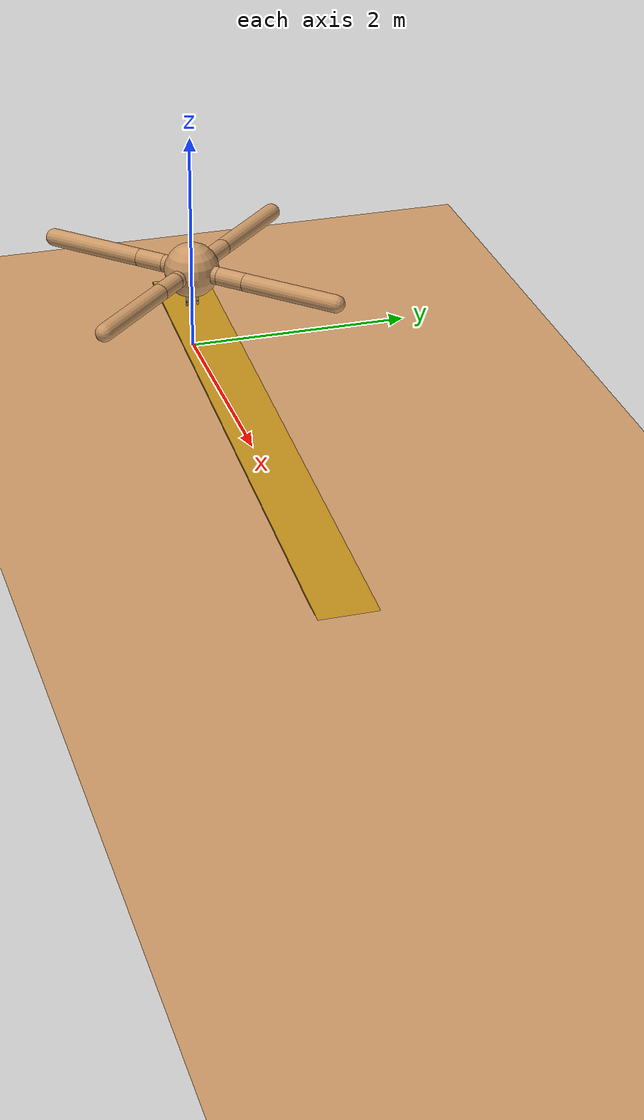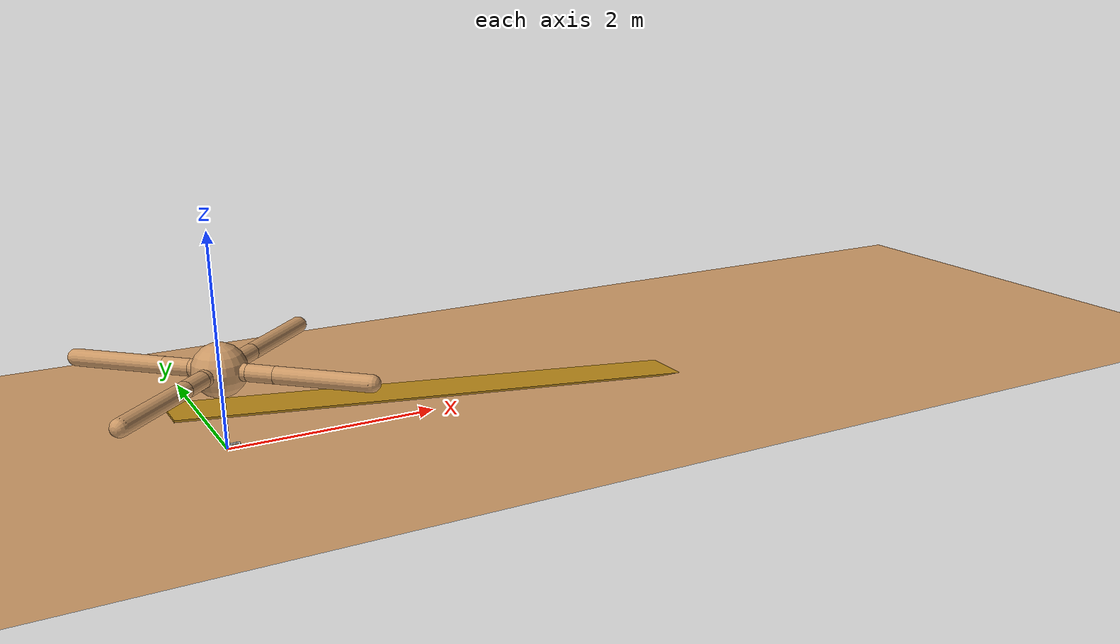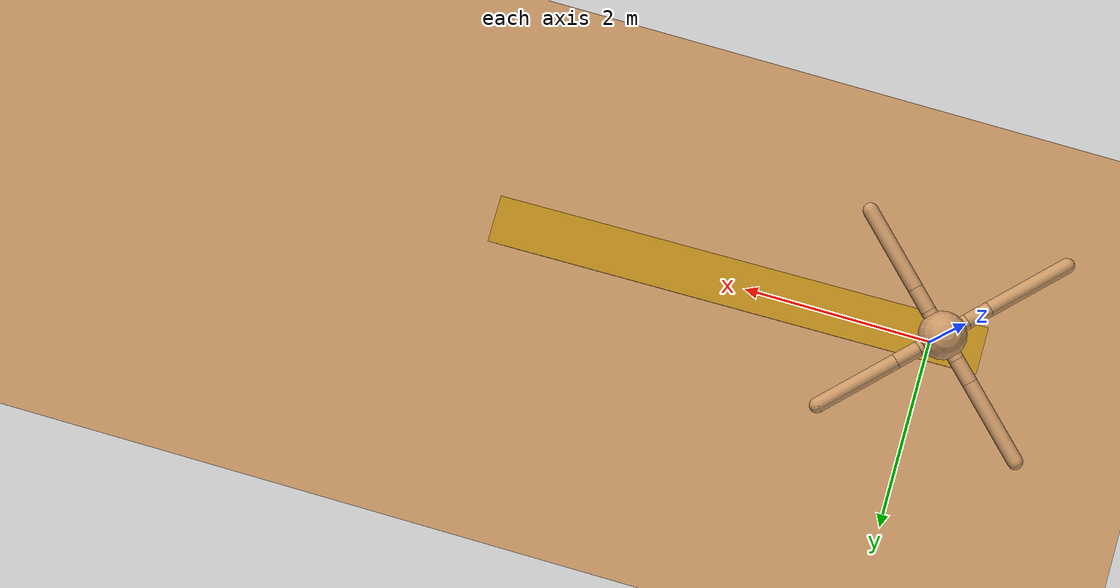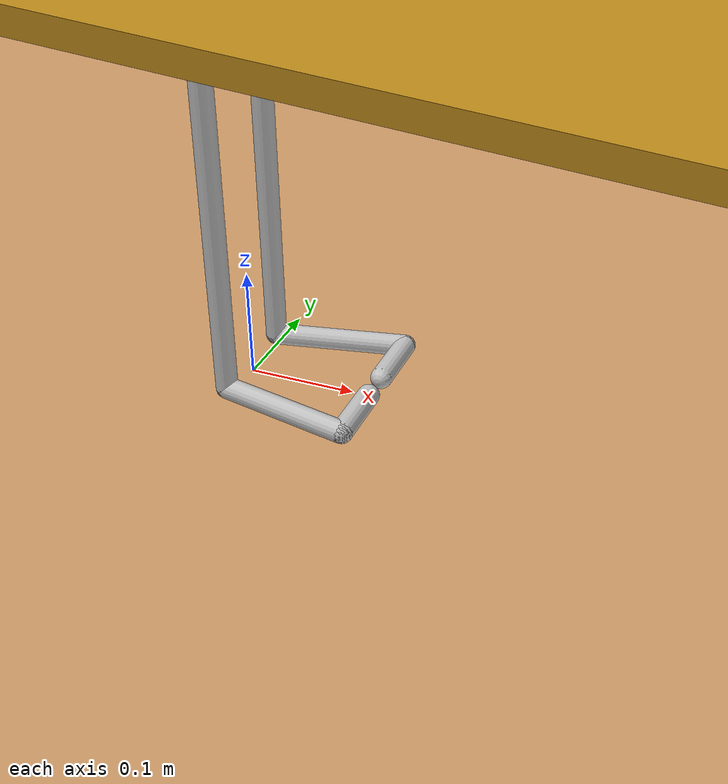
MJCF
<mujoco model="tensegrity default scene">
  <compiler angle="degree" coordinate="local" inertiafromgeom="true" autolimits="true" />
  <option integrator="RK4" timestep="0.001" gravity="0 0 -9.81" />

  <visual>
    <headlight diffuse="0.6 0.6 0.6" ambient="0.3 0.3 0.3" specular="0 0 0" />
    <rgba haze="0.15 0.25 0.35 1" />
    <global azimuth="120" elevation="-20" />
  </visual>

  <statistic center="0 0 .3" extent="1.2" />

  <asset>
    <texture type="skybox" builtin="gradient" rgb1="0.3 0.5 0.7" rgb2="0 0 0" width="512" height="3072" />
    <texture type="2d" name="groundplane" builtin="checker" mark="edge" rgb1="0.2 0.3 0.4" rgb2="0.1 0.2 0.3" markrgb="0.8 0.8 0.8" width="300" height="300" />
    <material name="groundplane" texture="groundplane" texuniform="true" texrepeat="5 5" reflectance="0.2" />
  </asset>

  <worldbody>
    <light pos="2.5 0 3" dir="0 0 -1" directional="false" />
    <geom name="floor" size="0 0 0.05" type="plane" material="groundplane" friction="150 150 150" />

    <geom name="slope" type="box" size="5 0.25 0.01" pos="4.5 0 0.0" rgba="0.75 0.55 0.1 1" euler="0 5 0" condim="4" />

  </worldbody>
<include file="PassiveWalkerRobot.xml" /><include file="AntRobot.xml" /></mujoco>

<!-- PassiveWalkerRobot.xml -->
<mujoco>
    <default>
        <joint armature="0.0" damping="0.01" type="hinge" range="-150 0" axis="0 -1 0"/>
        <geom condim="3" friction="1.5 1.0 1.0" margin="0.001"/>
        <default class="motor">
            <cylinder gear="100" ctrllimited="true" ctrlrange="-1 1"/>
        </default>
    </default>
    <worldbody>
        <body name="Base" pos="0.0 0.0 0.9253209432991717">
            <joint type="free"/>
            <geom type="sphere" rgba="0.75 0.75 0.75 1.0" size="0.05" mass="0.02"/>
            <body name="rod_0.1" pos="0.0 -0.05 -0.24314470179172196">
                <geom name="geom_0.1" type="capsule" fromto="-0.0 -0.0 0.24314470179172196 0.0 0.0 -0.24314470179172196" size="0.01" rgba="0.75 0.75 0.75 1.0" density="159.15494309189535"/>
                <site name="site_0.1" pos="0 0 0" quat="0.7071067811865476 -0.0 0.7071067811865475 0.0"/>
                <joint name="joint_Base=rod_0.1" pos="-0.0 -0.0 0.24314470179172196" range="-45 45"/>
                <body name="p0" pos="-0.0 -0.0 0.24314470179172196">
                    <geom type="sphere" size="0.011000000000000001" rgba="0.5 0.1 0.1 1.0" density="23873.2414637843"/>
                    <site name="p0"/>
                </body>
                <body name="rod_1.2" pos="0.0 0.0 -0.45691047164958587">
                    <geom name="geom_1.2" type="capsule" fromto="-0.0 -0.0 0.2137657698578639 0.0 0.0 -0.2137657698578639" size="0.01" rgba="0.75 0.75 0.75 1.0" density="159.15494309189535"/>
                    <site name="site_1.2" pos="0 0 0" quat="0.7071067811865476 -0.0 0.7071067811865475 0.0"/>
                    <joint name="joint_rod_0.1=rod_1.2" pos="-0.0 -0.0 0.2137657698578639" range="-150 0"/>
                    <body name="p1" pos="-0.0 -0.0 0.2137657698578639">
                        <geom type="sphere" size="0.011000000000000001" rgba="0.5 0.1 0.1 1.0" density="23873.2414637843"/>
                        <site name="p1"/>
                    </body>
                    <body name="rod_2.3" pos="0.06107675772630181 -0.012500000000000004 -0.2137657698578639">
                        <geom name="geom_2.3" type="capsule" fromto="-0.06107675772630181 0.012500000000000004 -0.0 0.06107675772630181 -0.012500000000000004 0.0" size="0.01" rgba="0.75 0.75 0.75 1.0" density="159.15494309189535"/>
                        <site name="site_2.3" pos="0 0 0" quat="0.9949102465217997 0.0 0.0 -0.1007650800919234"/>
                        <body name="rod_3.4" pos="0.06107675772630181 0.017499999999999995 0.0">
                            <geom name="geom_3.4" type="capsule" fromto="-0.0 -0.03 -0.0 0.0 0.03 0.0" size="0.01" rgba="0.75 0.75 0.75 1.0" density="159.15494309189535"/>
                            <site name="site_3.4" pos="0 0 0" quat="0.7071067811865476 0.0 0.0 0.7071067811865475"/>
                        </body>
                    </body>
                </body>
            </body>
            <body name="rod_5.6" pos="0.0 0.05 -0.24314470179172196">
                <geom name="geom_5.6" type="capsule" fromto="-0.0 -0.0 0.24314470179172196 0.0 0.0 -0.24314470179172196" size="0.01" rgba="0.75 0.75 0.75 1.0" density="159.15494309189535"/>
                <site name="site_5.6" pos="0 0 0" quat="0.7071067811865476 -0.0 0.7071067811865475 0.0"/>
                <joint name="joint_Base=rod_5.6" pos="-0.0 -0.0 0.24314470179172196" range="-45 45"/>
                <body name="p5" pos="-0.0 -0.0 0.24314470179172196">
                    <geom type="sphere" size="0.011000000000000001" rgba="0.5 0.1 0.1 1.0" density="23873.2414637843"/>
                    <site name="p5"/>
                </body>
                <body name="rod_6.7" pos="0.0 0.0 -0.45691047164958587">
                    <geom name="geom_6.7" type="capsule" fromto="-0.0 -0.0 0.2137657698578639 0.0 0.0 -0.2137657698578639" size="0.01" rgba="0.75 0.75 0.75 1.0" density="159.15494309189535"/>
                    <site name="site_6.7" pos="0 0 0" quat="0.7071067811865476 -0.0 0.7071067811865475 0.0"/>
                    <joint name="joint_rod_5.6=rod_6.7" pos="-0.0 -0.0 0.2137657698578639" range="-150 0"/>
                    <body name="p6" pos="-0.0 -0.0 0.2137657698578639">
                        <geom type="sphere" size="0.011000000000000001" rgba="0.5 0.1 0.1 1.0" density="23873.2414637843"/>
                        <site name="p6"/>
                    </body>
                    <body name="rod_7.8" pos="0.06107675772630181 0.012500000000000004 -0.2137657698578639">
                        <geom name="geom_7.8" type="capsule" fromto="-0.06107675772630181 -0.012500000000000004 -0.0 0.06107675772630181 0.012500000000000004 0.0" size="0.01" rgba="0.75 0.75 0.75 1.0" density="159.15494309189535"/>
                        <site name="site_7.8" pos="0 0 0" quat="0.9949102465217997 0.0 0.0 0.1007650800919234"/>
                        <body name="rod_8.9" pos="0.06107675772630181 -0.017499999999999995 0.0">
                            <geom name="geom_8.9" type="capsule" fromto="-0.0 0.03 -0.0 0.0 -0.03 0.0" size="0.01" rgba="0.75 0.75 0.75 1.0" density="159.15494309189535"/>
                            <site name="site_8.9" pos="0 0 0" quat="0.7071067811865476 0.0 0.0 -0.7071067811865475"/>
                        </body>
                    </body>
                </body>
            </body>
        </body>
    </worldbody>
    <actuator/>
    <sensor>
        <accelerometer site="site_0.1"/>
        <gyro site="site_0.1"/>
        <magnetometer site="site_0.1"/>
        <accelerometer site="site_1.2"/>
        <gyro site="site_1.2"/>
        <magnetometer site="site_1.2"/>
        <accelerometer site="site_2.3"/>
        <gyro site="site_2.3"/>
        <magnetometer site="site_2.3"/>
        <accelerometer site="site_3.4"/>
        <gyro site="site_3.4"/>
        <magnetometer site="site_3.4"/>
        <accelerometer site="site_5.6"/>
        <gyro site="site_5.6"/>
        <magnetometer site="site_5.6"/>
        <accelerometer site="site_6.7"/>
        <gyro site="site_6.7"/>
        <magnetometer site="site_6.7"/>
        <accelerometer site="site_7.8"/>
        <gyro site="site_7.8"/>
        <magnetometer site="site_7.8"/>
        <accelerometer site="site_8.9"/>
        <gyro site="site_8.9"/>
        <magnetometer site="site_8.9"/>
    </sensor>
    <contact>
        <pair geom1="geom_0.1" geom2="floor"/>
        <pair geom1="geom_1.2" geom2="floor"/>
        <pair geom1="geom_2.3" geom2="floor"/>
        <pair geom1="geom_3.4" geom2="floor"/>
        <pair geom1="geom_5.6" geom2="floor"/>
        <pair geom1="geom_6.7" geom2="floor"/>
        <pair geom1="geom_7.8" geom2="floor"/>
        <pair geom1="geom_8.9" geom2="floor"/>
    </contact>
</mujoco>

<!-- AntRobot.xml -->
<mujoco>
    <default>
        <joint armature="1" damping="1" limited="true"/>
        <geom condim="3" conaffinity="0" density="5.0" friction="1 0.5 0.5" margin="0.01" rgba="0.8 0.6 0.4 1"/>
    </default>
    <worldbody>
        <body name="Base" pos="0.0 0.0 0.75">
            <joint type="free" armature="0" damping="0" limited="false" margin="0.01" pos="0 0 0"/>
            <geom type="sphere" rgba="0.8 0.6 0.4 1" size="0.25"/>
            <camera name="track" mode="trackcom" pos="0 -3 0.3" xyaxes="1 0 0 0 0 1"/>
            <geom name="limb0" type="capsule" fromto="0 0 0 0.2 0.2 0.0" size="0.08"/>
            <body name="rod_0.1" pos="0.2933874140970745 0.2933874140970745 0.0">
                <geom type="capsule" fromto="-0.09338741409707446 -0.09338741409707446 -0.0 0.09338741409707446 0.09338741409707446 0.0" size="0.08" name="geom_0.1"/>
                <site pos="0 0 0" quat="0.9238795325112867 0.0 0.0 0.3826834323650898" name="site_0.1"/>
                <joint type="hinge" pos="-0.09338741409707446 -0.09338741409707446 -0.0" axis="0 0 1" range="-30 30" name="joint_Base=rod_0.1"/>
                <body pos="-0.09338741409707446 -0.09338741409707446 -0.0" name="p0">
                    <site name="p0"/>
                </body>
                <body name="rod_1.2" pos="0.41599797517473674 0.41599797517473674 0.0">
                    <geom type="capsule" fromto="-0.3226105610776623 -0.3226105610776623 -0.0 0.3226105610776623 0.3226105610776623 0.0" size="0.08" name="geom_1.2"/>
                    <site pos="0 0 0" quat="0.9238795325112867 0.0 0.0 0.3826834323650898" name="site_1.2"/>
                    <joint type="hinge" pos="-0.3226105610776623 -0.3226105610776623 -0.0" axis="-1 1 0" range="30 70" name="joint_rod_0.1=rod_1.2"/>
                    <body pos="-0.3226105610776623 -0.3226105610776623 -0.0" name="p1">
                        <site name="p1"/>
                    </body>
                </body>
            </body>
            <geom name="limb1" type="capsule" fromto="0 0 0 -0.2 0.2 0.0" size="0.08"/>
            <body name="rod_3.4" pos="-0.2933874140970745 0.2933874140970745 0.0">
                <geom type="capsule" fromto="0.09338741409707446 -0.09338741409707446 -0.0 -0.09338741409707446 0.09338741409707446 0.0" size="0.08" name="geom_3.4"/>
                <site pos="0 0 0" quat="0.38268343236508984 0.0 -0.0 0.9238795325112867" name="site_3.4"/>
                <joint type="hinge" pos="0.09338741409707446 -0.09338741409707446 -0.0" axis="0 0 1" range="-30 30" name="joint_Base=rod_3.4"/>
                <body pos="0.09338741409707446 -0.09338741409707446 -0.0" name="p3">
                    <site name="p3"/>
                </body>
                <body name="rod_4.5" pos="-0.41599797517473674 0.41599797517473674 0.0">
                    <geom type="capsule" fromto="0.3226105610776623 -0.3226105610776623 -0.0 -0.3226105610776623 0.3226105610776623 0.0" size="0.08" name="geom_4.5"/>
                    <site pos="0 0 0" quat="0.38268343236508984 0.0 -0.0 0.9238795325112867" name="site_4.5"/>
                    <joint type="hinge" pos="0.3226105610776623 -0.3226105610776623 -0.0" axis="1 1 0" range="-70 -30" name="joint_rod_3.4=rod_4.5"/>
                    <body pos="0.3226105610776623 -0.3226105610776623 -0.0" name="p4">
                        <site name="p4"/>
                    </body>
                </body>
            </body>
            <geom name="limb2" type="capsule" fromto="0 0 0 -0.2 -0.2 0.0" size="0.08"/>
            <body name="rod_6.7" pos="-0.2933874140970745 -0.2933874140970745 0.0">
                <geom type="capsule" fromto="0.09338741409707446 0.09338741409707446 -0.0 -0.09338741409707446 -0.09338741409707446 0.0" size="0.08" name="geom_6.7"/>
                <site pos="0 0 0" quat="0.38268343236508984 0.0 -0.0 -0.9238795325112867" name="site_6.7"/>
                <joint type="hinge" pos="0.09338741409707446 0.09338741409707446 -0.0" axis="0 0 1" range="-30 30" name="joint_Base=rod_6.7"/>
                <body pos="0.09338741409707446 0.09338741409707446 -0.0" name="p6">
                    <site name="p6"/>
                </body>
                <body name="rod_7.8" pos="-0.41599797517473674 -0.41599797517473674 0.0">
                    <geom type="capsule" fromto="0.3226105610776623 0.3226105610776623 -0.0 -0.3226105610776623 -0.3226105610776623 0.0" size="0.08" name="geom_7.8"/>
                    <site pos="0 0 0" quat="0.38268343236508984 0.0 -0.0 -0.9238795325112867" name="site_7.8"/>
                    <joint type="hinge" pos="0.3226105610776623 0.3226105610776623 -0.0" axis="-1 1 0" range="-70 -30" name="joint_rod_6.7=rod_7.8"/>
                    <body pos="0.3226105610776623 0.3226105610776623 -0.0" name="p7">
                        <site name="p7"/>
                    </body>
                </body>
            </body>
            <geom name="limb3" type="capsule" fromto="0 0 0 0.2 -0.2 0.0" size="0.08"/>
            <body name="rod_9.10" pos="0.2933874140970745 -0.2933874140970745 0.0">
                <geom type="capsule" fromto="-0.09338741409707446 0.09338741409707446 -0.0 0.09338741409707446 -0.09338741409707446 0.0" size="0.08" name="geom_9.10"/>
                <site pos="0 0 0" quat="0.9238795325112867 0.0 0.0 -0.3826834323650898" name="site_9.10"/>
                <joint type="hinge" pos="-0.09338741409707446 0.09338741409707446 -0.0" axis="0 0 1" range="-30 30" name="joint_Base=rod_9.10"/>
                <body pos="-0.09338741409707446 0.09338741409707446 -0.0" name="p9">
                    <site name="p9"/>
                </body>
                <body name="rod_10.11" pos="0.41599797517473674 -0.41599797517473674 0.0">
                    <geom type="capsule" fromto="-0.3226105610776623 0.3226105610776623 -0.0 0.3226105610776623 -0.3226105610776623 0.0" size="0.08" name="geom_10.11"/>
                    <site pos="0 0 0" quat="0.9238795325112867 0.0 0.0 -0.3826834323650898" name="site_10.11"/>
                    <joint type="hinge" pos="-0.3226105610776623 0.3226105610776623 -0.0" axis="1 1 0" range="30 70" name="joint_rod_9.10=rod_10.11"/>
                    <body pos="-0.3226105610776623 0.3226105610776623 -0.0" name="p10">
                        <site name="p10"/>
                    </body>
                </body>
            </body>
        </body>
    </worldbody>
    <actuator>
        <motor gear="150" ctrlrange="-1.0 1.0" ctrllimited="true" joint="joint_Base=rod_0.1"/>
        <motor gear="150" ctrlrange="-1.0 1.0" ctrllimited="true" joint="joint_rod_0.1=rod_1.2"/>
        <motor gear="150" ctrlrange="-1.0 1.0" ctrllimited="true" joint="joint_Base=rod_3.4"/>
        <motor gear="150" ctrlrange="-1.0 1.0" ctrllimited="true" joint="joint_rod_3.4=rod_4.5"/>
        <motor gear="150" ctrlrange="-1.0 1.0" ctrllimited="true" joint="joint_Base=rod_6.7"/>
        <motor gear="150" ctrlrange="-1.0 1.0" ctrllimited="true" joint="joint_rod_6.7=rod_7.8"/>
        <motor gear="150" ctrlrange="-1.0 1.0" ctrllimited="true" joint="joint_Base=rod_9.10"/>
        <motor gear="150" ctrlrange="-1.0 1.0" ctrllimited="true" joint="joint_rod_9.10=rod_10.11"/>
    </actuator>
    <sensor>
        <accelerometer site="site_0.1"/>
        <gyro site="site_0.1"/>
        <magnetometer site="site_0.1"/>
        <accelerometer site="site_1.2"/>
        <gyro site="site_1.2"/>
        <magnetometer site="site_1.2"/>
        <accelerometer site="site_3.4"/>
        <gyro site="site_3.4"/>
        <magnetometer site="site_3.4"/>
        <accelerometer site="site_4.5"/>
        <gyro site="site_4.5"/>
        <magnetometer site="site_4.5"/>
        <accelerometer site="site_6.7"/>
        <gyro site="site_6.7"/>
        <magnetometer site="site_6.7"/>
        <accelerometer site="site_7.8"/>
        <gyro site="site_7.8"/>
        <magnetometer site="site_7.8"/>
        <accelerometer site="site_9.10"/>
        <gyro site="site_9.10"/>
        <magnetometer site="site_9.10"/>
        <accelerometer site="site_10.11"/>
        <gyro site="site_10.11"/>
        <magnetometer site="site_10.11"/>
    </sensor>
    <contact>
        <pair geom1="geom_0.1" geom2="floor"/>
        <pair geom1="geom_1.2" geom2="floor"/>
        <pair geom1="geom_3.4" geom2="floor"/>
        <pair geom1="geom_4.5" geom2="floor"/>
        <pair geom1="geom_6.7" geom2="floor"/>
        <pair geom1="geom_7.8" geom2="floor"/>
        <pair geom1="geom_9.10" geom2="floor"/>
        <pair geom1="geom_10.11" geom2="floor"/>
    </contact>
</mujoco>
